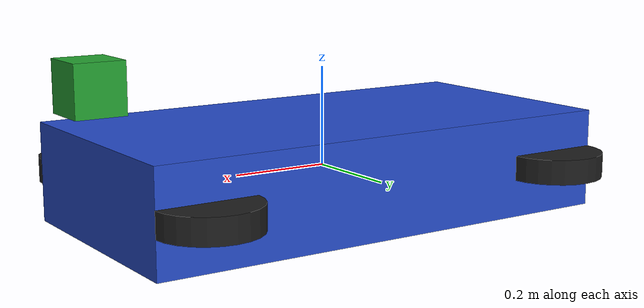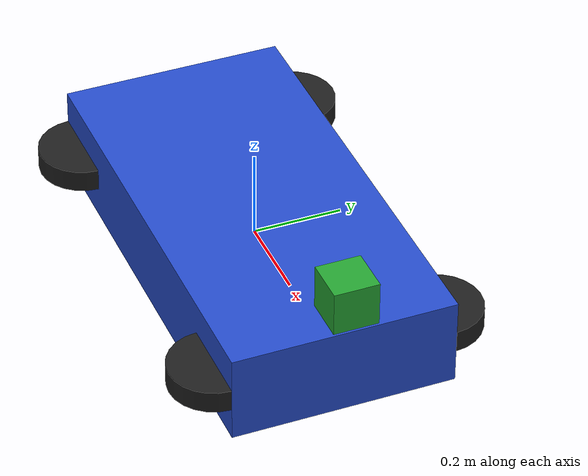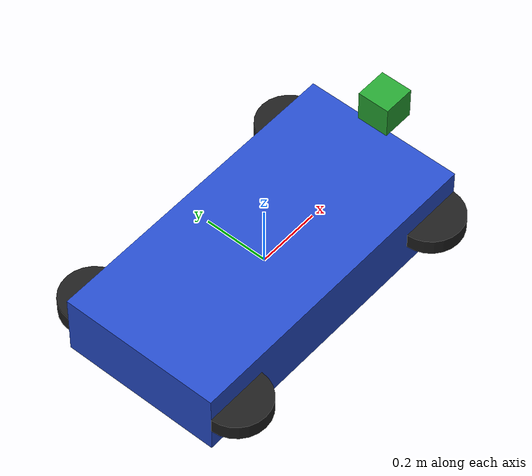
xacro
<robot xmlns:xacro="http://www.ros.org/wiki/xacro" name="simple_rover">

    <!-- Base Link -->
    <link name="base_link">
        <visual>
            <geometry>
                <box size="1 0.5 0.2"/>
            </geometry>
            <material name="blue"/>
        </visual>
        <collision>
            <geometry>
                <box size="1 0.5 0.2"/>
            </geometry>
        </collision>
        <inertial>
            <mass value="10"/>
            <origin xyz="0 0 0"/>
            <inertia ixx="0.1" ixy="0" ixz="0" iyy="0.1" iyz="0" izz="0.1"/>
        </inertial>
    </link>

    <!-- Wheel Macro Definition -->
    <xacro:macro name="wheel" params="name parent x y z">
        <joint name="${name}_joint" type="continuous">
            <parent link="${parent}"/>
            <child link="${name}"/>
            <origin xyz="${x} ${y} ${z}" rpy="0 0 0"/>
        </joint>

        <link name="${name}">
            <visual>
                <geometry>
                    <cylinder radius="0.1" length="0.05"/>
                </geometry>
                <material name="black"/>
            </visual>
            <collision>
                <geometry>
                    <cylinder radius="0.1" length="0.05"/>
                </geometry>
            </collision>
            <inertial>
                <mass value="1"/>
                <origin xyz="0 0 0"/>
                <inertia ixx="0.01" ixy="0" ixz="0" iyy="0.01" iyz="0" izz="0.01"/>
            </inertial>
        </link>
    </xacro:macro>

    <!-- Wheels -->
    <xacro:wheel name="front_left_wheel" parent="base_link" x="0.4" y="0.25" z="0"/>
    <xacro:wheel name="front_right_wheel" parent="base_link" x="0.4" y="-0.25" z="0"/>
    <xacro:wheel name="rear_left_wheel" parent="base_link" x="-0.4" y="0.25" z="0"/>
    <xacro:wheel name="rear_right_wheel" parent="base_link" x="-0.4" y="-0.25" z="0"/>

    <!-- Camera -->
    <link name="camera_link">
        <visual>
            <geometry>
                <box size="0.1 0.1 0.1"/>
            </geometry>
            <material name="green"/>
        </visual>
        <collision>
            <geometry>
                <box size="0.1 0.1 0.1"/>
            </geometry>
        </collision>
        <inertial>
            <mass value="0.1"/>
            <origin xyz="0 0 0"/>
            <inertia ixx="0.001" ixy="0" ixz="0" iyy="0.001" iyz="0" izz="0.001"/>
        </inertial>
    </link>

    <joint name="camera_joint" type="fixed">
        <parent link="base_link"/>
        <child link="camera_link"/>
        <origin xyz="0.5 0 0.2" rpy="0 0 0"/>
    </joint>

    <!-- Gazebo Camera Sensor -->
    <gazebo reference="camera_link">
        <sensor type="camera" name="camera_sensor">
            <update_rate>30</update_rate>
            <camera>
                <horizontal_fov>1.047</horizontal_fov>
                <image>
                    <width>640</width>
                    <height>480</height>
                    <format>R8G8B8</format>
                </image>
                <clip>
                    <near>0.1</near>
                    <far>100</far>
                </clip>
            </camera>
            <plugin name="camera_controller" filename="libgazebo_ros_camera.so">
                <robotNamespace>/</robotNamespace>
                <cameraName>camera</cameraName>
                <imageTopicName>image_raw</imageTopicName>
                <cameraInfoTopicName>camera_info</cameraInfoTopicName>
                <frameName>camera_link</frameName>
            </plugin>
        </sensor>
    </gazebo>

    <!-- Differential Drive Controller -->
    <gazebo>
        <plugin name="diff_drive_controller" filename="libgazebo_ros_diff_drive.so">
            <robotNamespace>/</robotNamespace>
            <commandTopic>cmd_vel</commandTopic>
            <odometryTopic>odom</odometryTopic>
            <odometryFrame>odom</odometryFrame>
            <robotBaseFrame>base_link</robotBaseFrame>
            <leftWheelJoint>front_left_wheel_joint rear_left_wheel_joint</leftWheelJoint>
            <rightWheelJoint>front_right_wheel_joint rear_right_wheel_joint</rightWheelJoint>
            <wheelSeparation>0.5</wheelSeparation>
            <wheelDiameter>0.2</wheelDiameter>
            <publishWheelTF>true</publishWheelTF>
            <publishWheelJointState>true</publishWheelJointState>
        </plugin>
    </gazebo>

</robot>
